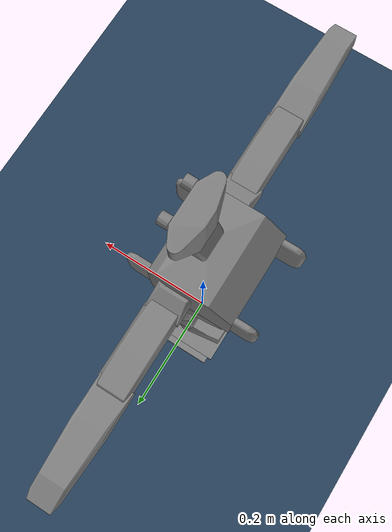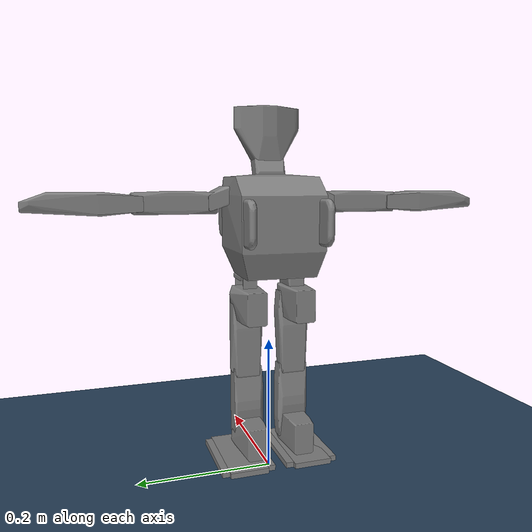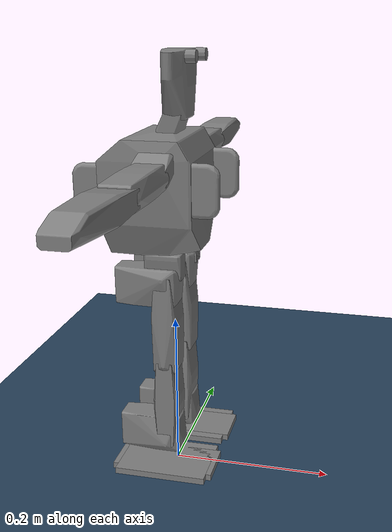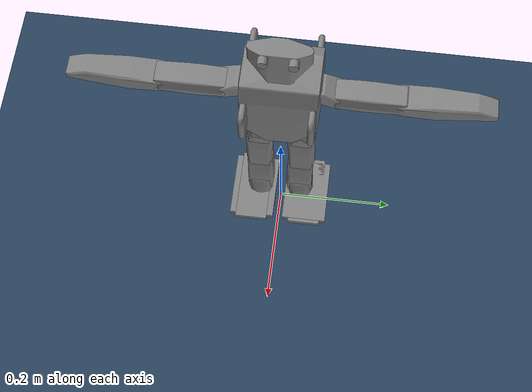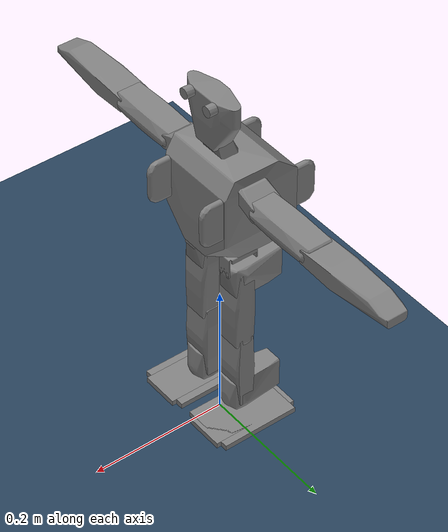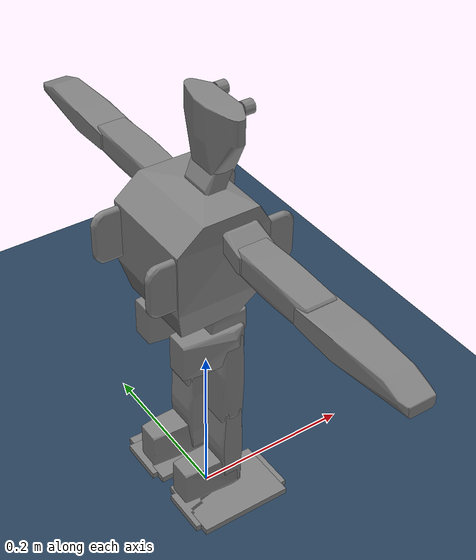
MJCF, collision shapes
<mujoco model="op3 scene">
  <include file="op3.xml"/>

  <visual>
    <headlight diffuse="0.6 0.6 0.6" ambient="0.3 0.3 0.3" specular="0 0 0"/>
    <rgba haze="0.15 0.25 0.35 1"/>
    <global azimuth="160" elevation="-20"/>
  </visual>

  <asset>
    <texture type="skybox" builtin="gradient" rgb1="0.3 0.5 0.7" rgb2="0 0 0" width="512" height="3072"/>
    <texture type="2d" name="groundplane" builtin="checker" mark="edge" rgb1="0.2 0.3 0.4" rgb2="0.1 0.2 0.3"
      markrgb="0.8 0.8 0.8" width="300" height="300"/>
    <material name="groundplane" texture="groundplane" texuniform="true" texrepeat="5 5" reflectance="0.2"/>
  </asset>

  <worldbody>
    <light pos="0 0 1.5" dir="0 0 -1" directional="true"/>
    <geom name="floor" size="0 0 0.05" type="plane" material="groundplane"/>
  </worldbody>
</mujoco>

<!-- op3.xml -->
<mujoco model="robotis_op3">
  <compiler angle="radian" meshdir="assets" autolimits="true"/>

  <asset>
    <material name="black" rgba="0.2 0.2 0.2 1"/>

    <mesh file="body.stl"/>
    <mesh file="ll1.stl"/>
    <mesh file="ll2.stl"/>
    <mesh file="ll3.stl"/>
    <mesh file="ll4.stl"/>
    <mesh file="ll5.stl"/>
    <mesh file="ll6.stl"/>
    <mesh file="rl1.stl"/>
    <mesh file="rl2.stl"/>
    <mesh file="rl3.stl"/>
    <mesh file="rl4.stl"/>
    <mesh file="rl5.stl"/>
    <mesh file="rl6.stl"/>
    <mesh file="la1.stl"/>
    <mesh file="la2.stl"/>
    <mesh file="la3.stl"/>
    <mesh file="ra1.stl"/>
    <mesh file="ra2.stl"/>
    <mesh file="ra3.stl"/>
    <mesh file="h1.stl"/>
    <mesh file="h2.stl"/>
    <mesh name="bodyc" file="simplified_convex/body.stl"/>
    <mesh name="body1c" file="simplified_convex/body_sub1.stl"/>
    <mesh name="body2c" file="simplified_convex/body_sub2.stl"/>
    <mesh name="body3c" file="simplified_convex/body_sub3.stl"/>
    <mesh name="body4c" file="simplified_convex/body_sub4.stl"/>
    <mesh name="ll1c" file="simplified_convex/ll1.stl"/>
    <mesh name="ll2c" file="simplified_convex/ll2.stl"/>
    <mesh name="ll3c" file="simplified_convex/ll3.stl"/>
    <mesh name="ll4c" file="simplified_convex/ll4.stl"/>
    <mesh name="ll5c" file="simplified_convex/ll5.stl"/>
    <mesh name="ll6c" file="simplified_convex/ll6.stl"/>
    <mesh name="rl1c" file="simplified_convex/rl1.stl"/>
    <mesh name="rl2c" file="simplified_convex/rl2.stl"/>
    <mesh name="rl3c" file="simplified_convex/rl3.stl"/>
    <mesh name="rl4c" file="simplified_convex/rl4.stl"/>
    <mesh name="rl5c" file="simplified_convex/rl5.stl"/>
    <mesh name="rl6c" file="simplified_convex/rl6.stl"/>
    <mesh name="la1c" file="simplified_convex/la1.stl"/>
    <mesh name="la2c" file="simplified_convex/la2.stl"/>
    <mesh name="la3c" file="simplified_convex/la3.stl"/>
    <mesh name="ra1c" file="simplified_convex/ra1.stl"/>
    <mesh name="ra2c" file="simplified_convex/ra2.stl"/>
    <mesh name="ra3c" file="simplified_convex/ra3.stl"/>
    <mesh name="h1c" file="simplified_convex/h1.stl"/>
    <mesh name="h2c" file="simplified_convex/h2.stl"/>
    <mesh name="h21c" file="simplified_convex/h2_sub1.stl"/>
    <mesh name="h22c" file="simplified_convex/h2_sub2.stl"/>
  </asset>

  <default>
    <mesh scale="0.001 0.001 0.001"/>
    <geom type="mesh" solref=".004 1"/>
    <joint damping="1.084" armature="0.045" frictionloss="0.03"/>
    <site group="5" type="sphere"/>
    <position kp="21.1" ctrlrange="-3.141592 3.141592" forcerange="-5 5"/>
    <default class="collision">
      <geom group="3"/>
      <default class="foot">
        <geom mass="0" type="box"/>
      </default>
    </default>
    <default class="visual">
      <geom material="black" contype="0" conaffinity="0" group="2"/>
    </default>
  </default>

  <worldbody>
    <body name="body_link" pos="0 0 0.3">
      <inertial pos="-0.01501 0.00013 0.06582" quat="0.704708 0.704003 0.0667707 -0.0575246" mass="1.34928"
        diaginertia="0.00341264 0.00316574 0.00296931"/>
      <freejoint/>
      <geom mesh="body" class="visual"/>
      <geom mesh="bodyc" class="collision"/>
      <geom mesh="body1c" class="collision"/>
      <geom mesh="body2c" class="collision"/>
      <geom mesh="body3c" class="collision"/>
      <geom mesh="body4c" class="collision"/>
      <site name="torso"/>
      <body name="head_pan_link" pos="-0.001 0 0.1365">
        <inertial pos="0.00233 0 0.00823" quat="0.663575 0.663575 0.244272 -0.244272" mass="0.01176"
          diaginertia="4.23401e-06 3.60599e-06 1.65e-06"/>
        <joint name="head_pan" axis="0 0 1"/>
        <geom mesh="h1" class="visual"/>
        <geom mesh="h1c" class="collision"/>
        <body name="head_tilt_link" pos="0.01 0.019 0.0285">
          <inertial pos="0.0023 -0.01863 0.0277" quat="0.997312 0.00973825 0.0726131 -0.00102702" mass="0.13631"
            diaginertia="0.000107452 8.72266e-05 4.39413e-05"/>
          <joint name="head_tilt" axis="0 -1 0"/>
          <geom mesh="h2" class="visual"/>
          <geom mesh="h2c" class="collision"/>
          <geom mesh="h21c" class="collision"/>
          <geom mesh="h22c" class="collision"/>
          <camera name="egocentric" pos="0.01425 -0.019 0.04975" fovy="43.3" mode="fixed"
            euler="0.0 -1.570796 -1.570796"/>
        </body>
      </body>
      <body name="l_sho_pitch_link" pos="-0.001 0.06 0.111">
        <inertial pos="0 0.00823 -0.00233" quat="0.244272 0.663575 0.244272 0.663575" mass="0.01176"
          diaginertia="4.23401e-06 3.60599e-06 1.65e-06"/>
        <joint name="l_sho_pitch" axis="0 1 0"/>
        <geom mesh="la1" class="visual"/>
        <geom mesh="la1c" class="collision"/>
        <body name="l_sho_roll_link" pos="0.019 0.0285 -0.01">
          <inertial pos="-0.01844 0.04514 0.00028" quat="0.501853 0.50038 -0.498173 0.499588" mass="0.17758"
            diaginertia="0.000234742 0.00022804 3.04183e-05"/>
          <joint name="l_sho_roll" axis="-1 0 0"/>
          <geom mesh="la2" class="visual"/>
          <geom mesh="la2c" class="collision"/>
          <body name="l_el_link" pos="0 0.0904 -0.0001">
            <inertial pos="-0.019 0.07033 0.0038" quat="0.483289 0.51617 -0.51617 0.483289" mass="0.04127"
              diaginertia="6.8785e-05 6.196e-05 1.2065e-05"/>
            <joint name="l_el" axis="1 0 0"/>
            <geom mesh="la3" class="visual"/>
            <geom mesh="la3c" class="collision"/>
          </body>
        </body>
      </body>
      <body name="r_sho_pitch_link" pos="-0.001 -0.06 0.111">
        <inertial pos="0 -0.00823 -0.00233" quat="-0.244272 0.663575 -0.244272 0.663575" mass="0.01176"
          diaginertia="4.23401e-06 3.60599e-06 1.65e-06"/>
        <joint name="r_sho_pitch" axis="0 -1 0"/>
        <geom mesh="ra1" class="visual"/>
        <geom mesh="ra1c" class="collision"/>
        <body name="r_sho_roll_link" pos="0.019 -0.0285 -0.01">
          <inertial pos="-0.01844 -0.04514 0.00028" quat="0.50038 0.501853 -0.499588 0.498173" mass="0.17758"
            diaginertia="0.000234742 0.00022804 3.04183e-05"/>
          <joint name="r_sho_roll" axis="-1 0 0"/>
          <geom mesh="ra2" class="visual"/>
          <geom mesh="ra2c" class="collision"/>
          <body name="r_el_link" pos="0 -0.0904 -0.0001">
            <inertial pos="-0.019 -0.07033 0.0038" quat="0.51617 0.483289 -0.483289 0.51617" mass="0.04127"
              diaginertia="6.8785e-05 6.196e-05 1.2065e-05"/>
            <joint name="r_el" axis="1 0 0"/>
            <geom mesh="ra3" class="visual"/>
            <geom mesh="ra3c" class="collision"/>
          </body>
        </body>
      </body>
      <body name="l_hip_yaw_link" pos="0 0.035 0">
        <inertial pos="-0.00157 0 -0.00774" quat="0.499041 0.500957 0.500957 0.499041" mass="0.01181"
          diaginertia="4.3e-06 4.12004e-06 1.50996e-06"/>
        <joint name="l_hip_yaw" axis="0 0 -1"/>
        <geom mesh="ll1" class="visual"/>
        <geom mesh="ll1c" class="collision"/>
        <body name="l_hip_roll_link" pos="-0.024 0 -0.0285">
          <inertial pos="0.00388 0.00028 -0.01214" quat="0.502657 0.490852 0.498494 0.507842" mass="0.17886"
            diaginertia="0.000125243 0.000108598 4.65693e-05"/>
          <joint name="l_hip_roll" axis="-1 0 0"/>
          <geom mesh="ll2" class="visual"/>
          <geom mesh="ll2c" class="collision"/>
          <body name="l_hip_pitch_link" pos="0.0241 0.019 0">
            <inertial pos="0.00059 -0.01901 -0.08408" quat="0.999682 0.0246915 0.00447825 -0.002482" mass="0.11543"
              diaginertia="0.000104996 9.63044e-05 2.47492e-05"/>
            <joint name="l_hip_pitch" axis="0 1 0"/>
            <geom mesh="ll3" class="visual"/>
            <geom mesh="ll3c" class="collision"/>
            <body name="l_knee_link" pos="0 0 -0.11015">
              <inertial pos="0 -0.02151 -0.055" mass="0.04015" diaginertia="3.715e-05 2.751e-05 1.511e-05"/>
              <joint name="l_knee" axis="0 1 0"/>
              <geom mesh="ll4" class="visual"/>
              <geom mesh="ll4c" class="collision"/>
              <body name="l_ank_pitch_link" pos="0 0 -0.11">
                <inertial pos="-0.02022 -0.01872 0.01214" quat="0.490852 0.502657 0.507842 0.498494" mass="0.17886"
                  diaginertia="0.000125243 0.000108598 4.65693e-05"/>
                <joint name="l_ank_pitch" axis="0 -1 0"/>
                <geom mesh="ll5" class="visual"/>
                <geom mesh="ll5c" class="collision"/>
                <body name="l_ank_roll_link" pos="-0.0241 -0.019 0">
                  <inertial pos="0.02373 0.01037 -0.0276" quat="0.0078515 0.707601 0.0113965 0.706477" mass="0.06934"
                    diaginertia="0.000115818 7.87135e-05 4.03389e-05"/>
                  <joint name="l_ank_roll" axis="1 0 0"/>
                  <geom mesh="ll6" class="visual"/>
                  <geom class="foot" pos="0.024 0.013 -0.0265" size="0.0635 0.028 0.004"/>
                  <geom class="foot" pos="0.024 0.0125 -0.0265" size="0.057 0.039 0.004"/>
                </body>
              </body>
            </body>
          </body>
        </body>
      </body>
      <body name="r_hip_yaw_link" pos="0 -0.035 0">
        <inertial pos="-0.00157 0 -0.00774" quat="0.499041 0.500957 0.500957 0.499041" mass="0.01181"
          diaginertia="4.3e-06 4.12004e-06 1.50996e-06"/>
        <joint name="r_hip_yaw" axis="0 0 -1"/>
        <geom mesh="rl1" class="visual"/>
        <geom mesh="rl1c" class="collision"/>
        <body name="r_hip_roll_link" pos="-0.024 0 -0.0285">
          <inertial pos="0.00388 -0.00028 -0.01214" quat="0.507842 0.498494 0.490852 0.502657" mass="0.17886"
            diaginertia="0.000125243 0.000108598 4.65693e-05"/>
          <joint name="r_hip_roll" axis="-1 0 0"/>
          <geom mesh="rl2" class="visual"/>
          <geom mesh="rl2c" class="collision"/>
          <body name="r_hip_pitch_link" pos="0.0241 -0.019 0">
            <inertial pos="0.00059 0.01901 -0.08408" quat="0.999682 -0.0246915 0.00447825 0.002482" mass="0.11543"
              diaginertia="0.000104996 9.63044e-05 2.47492e-05"/>
            <joint name="r_hip_pitch" axis="0 -1 0"/>
            <geom mesh="rl3" class="visual"/>
            <geom mesh="rl3c" class="collision"/>
            <body name="r_knee_link" pos="0 0 -0.11015">
              <inertial pos="0 0.02151 -0.055" mass="0.04015" diaginertia="3.715e-05 2.751e-05 1.511e-05"/>
              <joint name="r_knee" axis="0 -1 0"/>
              <geom mesh="rl4" class="visual"/>
              <geom mesh="rl4c" class="collision"/>
              <body name="r_ank_pitch_link" pos="0 0 -0.11">
                <inertial pos="-0.02022 0.01872 0.01214" quat="0.498494 0.507842 0.502657 0.490852" mass="0.17886"
                  diaginertia="0.000125243 0.000108598 4.65693e-05"/>
                <joint name="r_ank_pitch" axis="0 1 0"/>
                <geom mesh="rl5" class="visual"/>
                <geom mesh="rl5c" class="collision"/>
                <body name="r_ank_roll_link" pos="-0.0241 0.019 0">
                  <inertial pos="0.02373 -0.01037 -0.0276" quat="-0.0078515 0.707601 -0.0113965 0.706477" mass="0.06934"
                    diaginertia="0.000115818 7.87135e-05 4.03389e-05"/>
                  <joint name="r_ank_roll" axis="1 0 0"/>
                  <geom mesh="rl6" class="visual"/>
                  <geom class="foot" pos="0.024 -0.013 -0.0265" size="0.0635 0.028 0.004"/>
                  <geom class="foot" pos="0.024 -0.0125 -0.0265" size="0.057 0.039 0.004"/>
                </body>
              </body>
            </body>
          </body>
        </body>
      </body>
    </body>
  </worldbody>

  <contact>
    <exclude body1="l_hip_yaw_link" body2="l_hip_pitch_link"/>
    <exclude body1="r_hip_yaw_link" body2="r_hip_pitch_link"/>
  </contact>

  <actuator>
    <position name="head_pan_act" joint="head_pan"/>
    <position name="head_tilt_act" joint="head_tilt"/>
    <position name="l_sho_pitch_act" joint="l_sho_pitch"/>
    <position name="l_sho_roll_act" joint="l_sho_roll"/>
    <position name="l_el_act" joint="l_el"/>
    <position name="r_sho_pitch_act" joint="r_sho_pitch"/>
    <position name="r_sho_roll_act" joint="r_sho_roll"/>
    <position name="r_el_act" joint="r_el"/>
    <position name="l_hip_yaw_act" joint="l_hip_yaw"/>
    <position name="l_hip_roll_act" joint="l_hip_roll"/>
    <position name="l_hip_pitch_act" joint="l_hip_pitch"/>
    <position name="l_knee_act" joint="l_knee"/>
    <position name="l_ank_pitch_act" joint="l_ank_pitch"/>
    <position name="l_ank_roll_act" joint="l_ank_roll"/>
    <position name="r_hip_yaw_act" joint="r_hip_yaw"/>
    <position name="r_hip_roll_act" joint="r_hip_roll"/>
    <position name="r_hip_pitch_act" joint="r_hip_pitch"/>
    <position name="r_knee_act" joint="r_knee"/>
    <position name="r_ank_pitch_act" joint="r_ank_pitch"/>
    <position name="r_ank_roll_act" joint="r_ank_roll"/>
  </actuator>
</mujoco>
